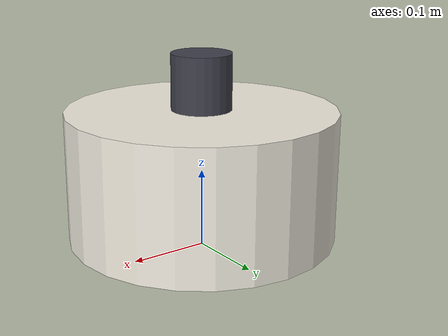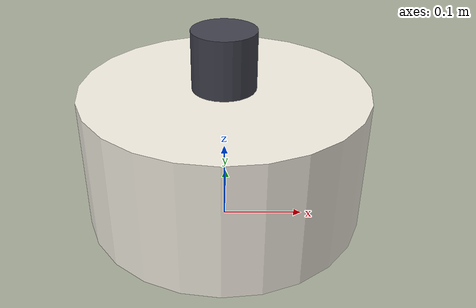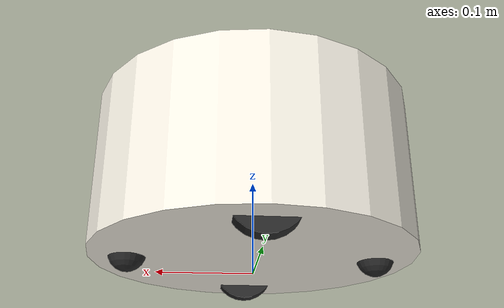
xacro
<?xml version="1.0"?>
<robot name="petmate" xmlns:xacro="http://www.ros.org/wiki/xacro">

  <xacro:arg name="lidar" default="l2"/>
  <!-- LiDAR mounting orientation is NOT specified in INTERFACES.md §1.
       Default upright (dome up). Override e.g. lidar_roll:=3.14159 for an
       inverted mount, or lidar_pitch for a tilted one. -->
  <xacro:arg name="lidar_roll" default="0.0"/>
  <xacro:arg name="lidar_pitch" default="0.0"/>
  <xacro:arg name="lidar_yaw" default="0.0"/>

  <xacro:property name="PI" value="3.141592653589793"/>
  <xacro:property name="body_radius" value="0.170"/>
  <xacro:property name="body_height" value="0.165"/>
  <xacro:property name="body_clearance" value="0.015"/>  <!-- floor to body bottom (assumed) -->
  <xacro:property name="base_z" value="0.036"/>
  <xacro:property name="wheel_radius" value="0.036"/>
  <xacro:property name="wheel_width" value="0.020"/>
  <xacro:property name="track" value="0.260"/>
  <xacro:property name="caster_radius" value="0.020"/>
  <xacro:property name="caster_x" value="0.130"/>
  <xacro:property name="lidar_z" value="0.235"/>
  <xacro:property name="cam_x" value="0.155"/>
  <xacro:property name="cam_front_z" value="0.135"/>  <!-- front camera in display bezel, above the bowl recess -->
  <xacro:property name="cam_rear_z" value="0.110"/>
  <xacro:property name="cam_pitch" value="${10.0 * PI / 180.0}"/>  <!-- -10 deg (nose down) => +pitch in REP-103 -->

  <material name="shell"><color rgba="0.95 0.93 0.88 1"/></material>
  <material name="dark"><color rgba="0.15 0.15 0.15 1"/></material>
  <material name="lidar"><color rgba="0.25 0.25 0.3 1"/></material>

  <xacro:macro name="cyl_inertia" params="m r h">
    <inertia ixx="${m*(3*r*r+h*h)/12}" ixy="0" ixz="0"
             iyy="${m*(3*r*r+h*h)/12}" iyz="0" izz="${m*r*r/2}"/>
  </xacro:macro>

  <link name="base_footprint"/>

  <link name="base_link">
    <visual>
      <origin xyz="0 0 ${body_clearance + body_height/2 - base_z}"/>
      <geometry><cylinder radius="${body_radius}" length="${body_height}"/></geometry>
      <material name="shell"/>
    </visual>
    <collision>
      <origin xyz="0 0 ${body_clearance + body_height/2 - base_z}"/>
      <geometry><cylinder radius="${body_radius}" length="${body_height}"/></geometry>
    </collision>
    <inertial>
      <origin xyz="0 0 ${body_clearance + body_height/2 - base_z}"/>
      <mass value="4.0"/>
      <xacro:cyl_inertia m="4.0" r="${body_radius}" h="${body_height}"/>
    </inertial>
  </link>

  <joint name="base_joint" type="fixed">
    <parent link="base_footprint"/>
    <child link="base_link"/>
    <origin xyz="0 0 ${base_z}" rpy="0 0 0"/>
  </joint>

  <xacro:macro name="drive_wheel" params="side y">
    <link name="wheel_${side}_link">
      <visual>
        <origin rpy="${PI/2} 0 0"/>
        <geometry><cylinder radius="${wheel_radius}" length="${wheel_width}"/></geometry>
        <material name="dark"/>
      </visual>
      <collision>
        <origin rpy="${PI/2} 0 0"/>
        <geometry><cylinder radius="${wheel_radius}" length="${wheel_width}"/></geometry>
      </collision>
      <inertial>
        <origin rpy="${PI/2} 0 0"/>
        <mass value="0.12"/>
        <xacro:cyl_inertia m="0.12" r="${wheel_radius}" h="${wheel_width}"/>
      </inertial>
    </link>
    <joint name="wheel_${side}_joint" type="continuous">
      <parent link="base_link"/>
      <child link="wheel_${side}_link"/>
      <origin xyz="0 ${y} 0"/>
      <axis xyz="0 1 0"/>
    </joint>
  </xacro:macro>

  <xacro:drive_wheel side="left" y="${track/2}"/>
  <xacro:drive_wheel side="right" y="${-track/2}"/>

  <xacro:macro name="caster" params="name x">
    <link name="caster_${name}_link">
      <visual><geometry><sphere radius="${caster_radius}"/></geometry><material name="dark"/></visual>
      <collision><geometry><sphere radius="${caster_radius}"/></geometry></collision>
      <inertial><mass value="0.03"/>
        <inertia ixx="5e-6" ixy="0" ixz="0" iyy="5e-6" iyz="0" izz="5e-6"/></inertial>
    </link>
    <joint name="caster_${name}_joint" type="fixed">
      <parent link="base_link"/>
      <child link="caster_${name}_link"/>
      <origin xyz="${x} 0 ${caster_radius - base_z}"/>
    </joint>
  </xacro:macro>

  <xacro:caster name="front" x="${caster_x}"/>
  <xacro:caster name="rear" x="${-caster_x}"/>

  <!-- 3D LiDAR, optical centre at z = 0.235 m above floor, centred on the back -->
  <link name="lidar_link">
    <visual>
      <origin xyz="0 0 -0.02"/>
      <geometry><cylinder radius="0.038" length="0.070"/></geometry>
      <material name="lidar"/>
    </visual>
  </link>
  <joint name="lidar_joint" type="fixed">
    <parent link="base_link"/>
    <child link="lidar_link"/>
    <origin xyz="0 0 ${lidar_z - base_z}" rpy="$(arg lidar_roll) $(arg lidar_pitch) $(arg lidar_yaw)"/>
  </joint>

  <!-- MCU IMU (ICM-42688-P). Mounting position not specified in §1: assumed at
       the geometric centre, axes aligned with base_link. Update when PCB placed. -->
  <link name="imu_link"/>
  <joint name="imu_joint" type="fixed">
    <parent link="base_link"/>
    <child link="imu_link"/>
    <origin xyz="0 0 0.010" rpy="0 0 0"/>
  </joint>

  <link name="camera_front_link"/>
  <joint name="camera_front_joint" type="fixed">
    <parent link="base_link"/>
    <child link="camera_front_link"/>
    <origin xyz="${cam_x} 0 ${cam_front_z - base_z}" rpy="0 ${cam_pitch} 0"/>
  </joint>

  <link name="camera_rear_link"/>
  <joint name="camera_rear_joint" type="fixed">
    <parent link="base_link"/>
    <child link="camera_rear_link"/>
    <origin xyz="${-cam_x} 0 ${cam_rear_z - base_z}" rpy="0 ${cam_pitch} ${PI}"/>
  </joint>

  <!-- Optical frames (z forward, x right, y down) for image consumers -->
  <link name="camera_front_optical_frame"/>
  <joint name="camera_front_optical_joint" type="fixed">
    <parent link="camera_front_link"/>
    <child link="camera_front_optical_frame"/>
    <origin rpy="${-PI/2} 0 ${-PI/2}"/>
  </joint>
  <link name="camera_rear_optical_frame"/>
  <joint name="camera_rear_optical_joint" type="fixed">
    <parent link="camera_rear_link"/>
    <child link="camera_rear_optical_frame"/>
    <origin rpy="${-PI/2} 0 ${-PI/2}"/>
  </joint>
</robot>
